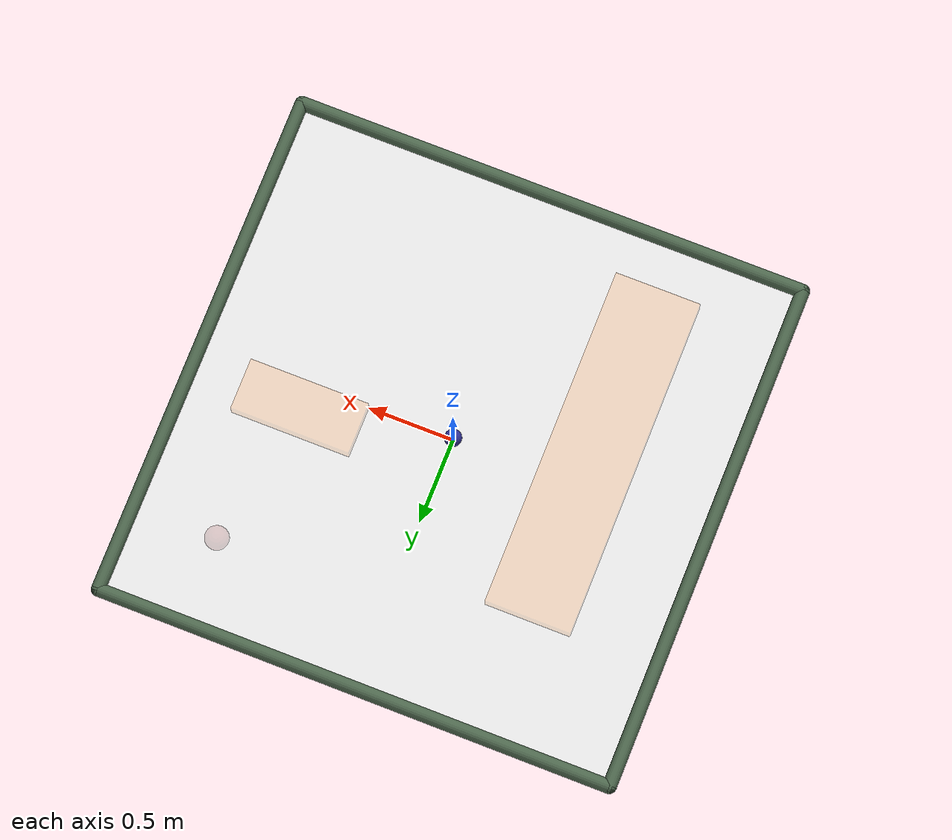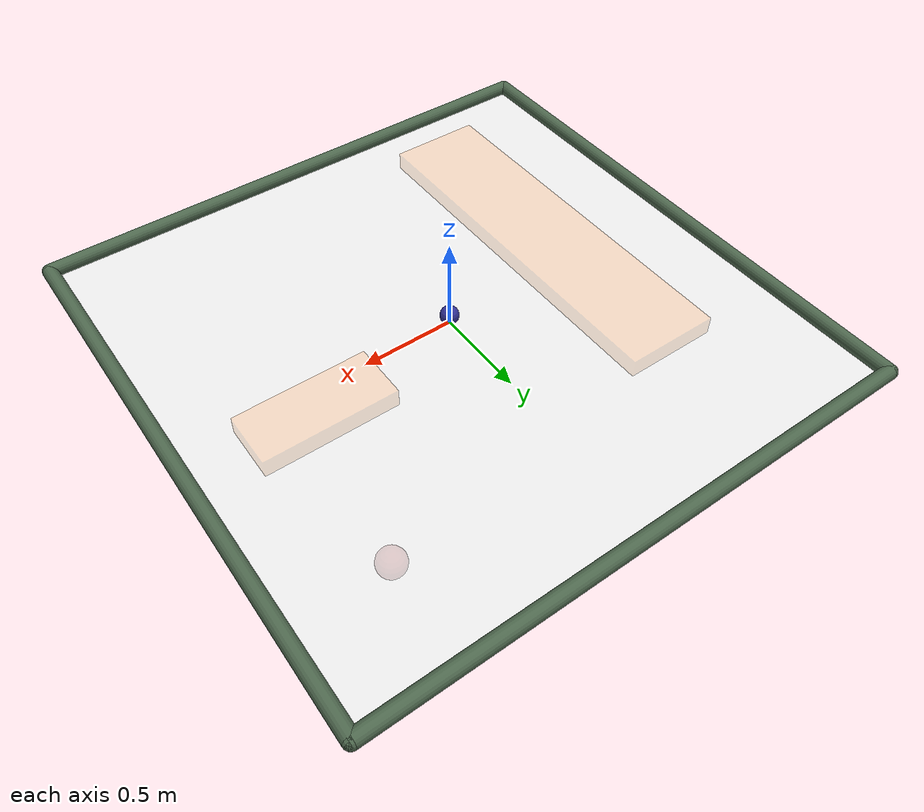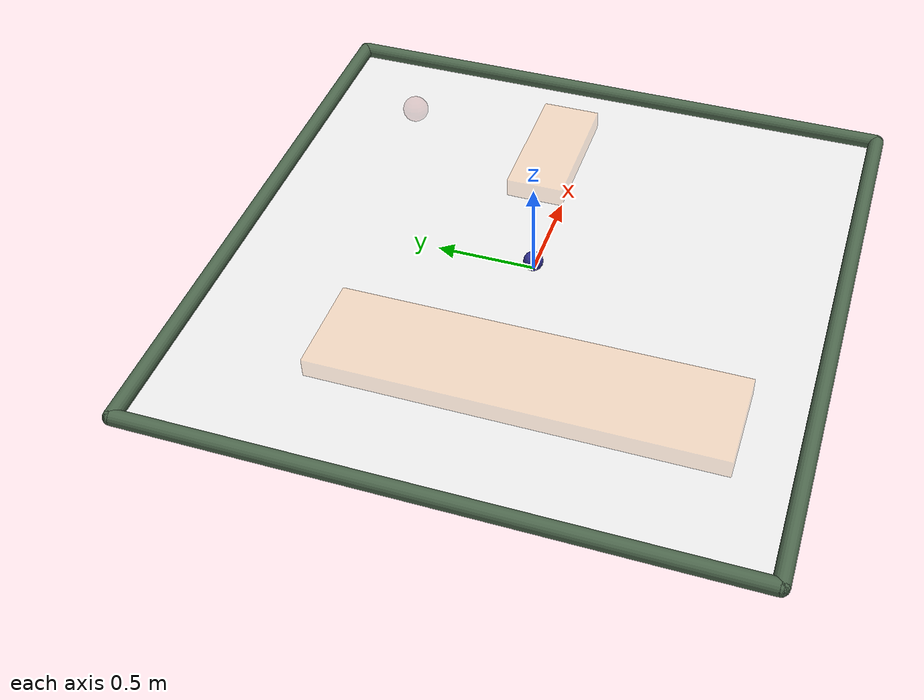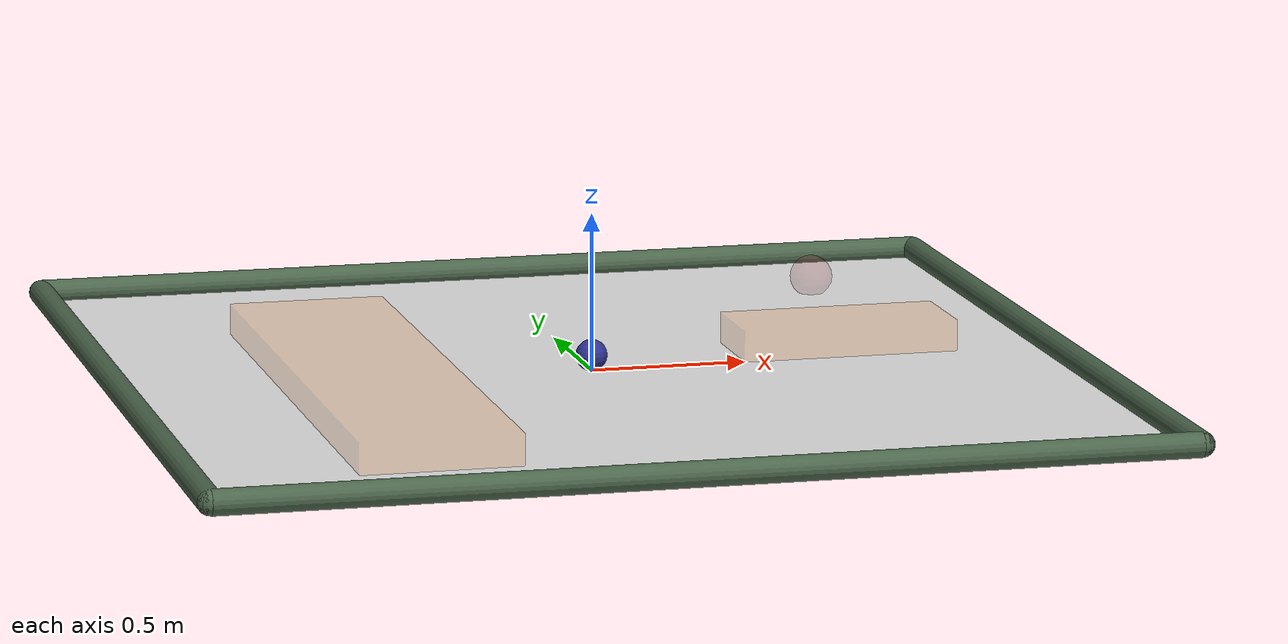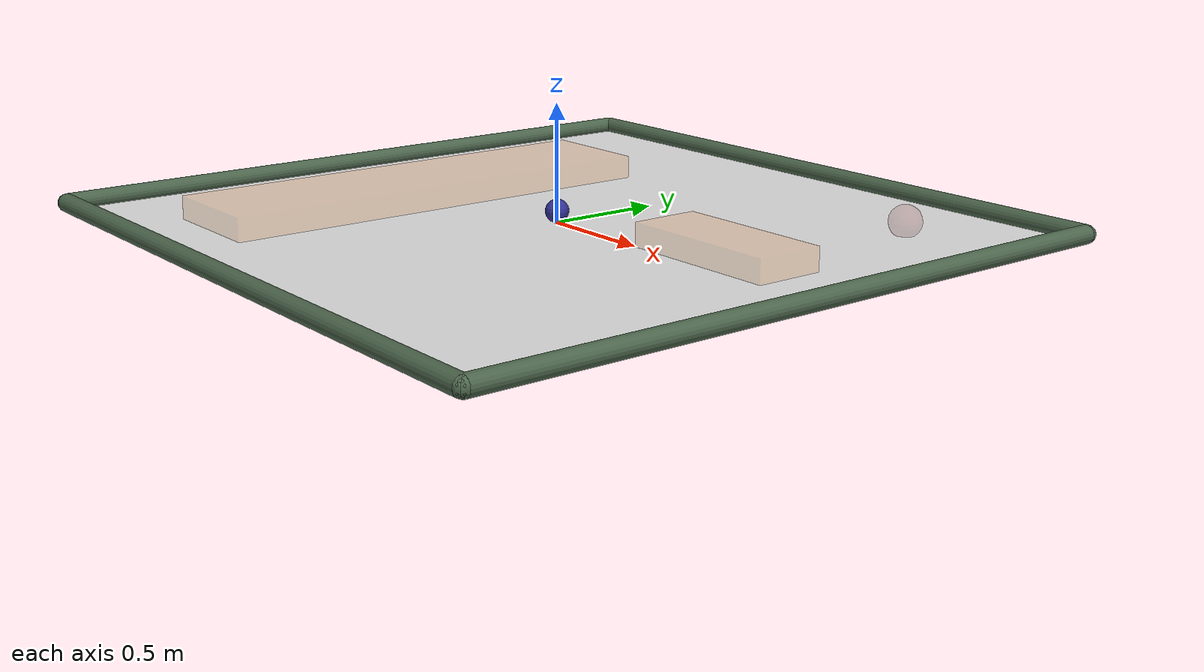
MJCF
<!-- Author + Copyright (C) Aravind Rajeswaran, rajeswaran.aravind@gmail.com.
See LICENSE file for legal notices. LICENSE must be kept together with this file. -->
<mujoco model="PointMass">
    <compiler inertiafromgeom="true" angle="radian" />
    <default>
        <joint armature="0.01" damping="0.1" limited="true"/>
        <geom contype="0" friction="1 0.1 0.1" rgba="0.7 0.7 0 1"/>
        <motor ctrllimited="true" ctrlrange="-1.0 1.0" />
    </default>
    <option gravity="0 0 0" integrator="RK4" timestep="0.01"/>

    <asset>
        <texture type="skybox" builtin="gradient" rgb1=".1 .12 .15" rgb2="0 0 0" width="100" height="100"/>
        <texture builtin="flat" height="100" name="grayplane" rgb1="0.4 0.4 0.4" rgb2=".1 0.15 0.2" type="2d" width="100"/>
        <material name="grayfloor" reflectance="0" shininess="0" specular="1" texture="grayplane"/>
    </asset>

    <worldbody>
        <!-- Arena -->
        <geom conaffinity="0" contype="0" name="ground" pos="0 0 0" rgba="0.9 0.9 0.9 1" size="1.5 1.5 .05" type="plane" material="grayfloor"/>
        <geom conaffinity="0" fromto="-1.5 -1.5 .02 1.5 -1.5 .02" name="sideS" rgba="0.3 0.4 0.3 1.0" size=".04" type="capsule" mass="0.1"/>
        <geom conaffinity="0" fromto=" 1.5 -1.5 .02 1.5  1.5 .02" name="sideE" rgba="0.3 0.4 0.3 1.0" size=".04" type="capsule" mass="0.1"/>
        <geom conaffinity="0" fromto="-1.5  1.5 .02 1.5  1.5 .02" name="sideN" rgba="0.3 0.4 0.3 1.0" size=".04" type="capsule" mass="0.1"/>
        <geom conaffinity="0" fromto="-1.5 -1.5 .02 -1.5 1.5 .02" name="sideW" rgba="0.3 0.4 0.3 1.0" size=".04" type="capsule" mass="0.1"/>

        <!-- Agent -->
        <body name="agent" pos="0 0 .05">
            <joint axis="1 0 0" name="agent_x" pos="0 0 0" range="-1.4 1.4" stiffness="0" type="slide"/>
            <joint axis="0 1 0" name="agent_y" pos="0 0 0" range="-1.4 1.4" stiffness="0" type="slide"/>
            <geom conaffinity="1" contype="1" name="agent" pos="0 0 0" rgba="0.2 0.2 0.6 1" size=".05" type="sphere"/>
        </body>

        <!-- Target -->
        <site name="target" pos="1.0 1.0 .05" rgba="0.6 0.2 0.2 0.2" size=".07" type="sphere" />

        <!-- Potholes -->
        <site name="pothole1" type="box" pos="-0.75 -0.2 0.05" size="0.25 1 0.05" rgba="1.0 0.5 0.1 0.2"/>
        <site name="pothole2" type="box" pos="0.85 0.15 0.05" size="0.35 0.15 0.05" rgba="1.0 0.5 0.1 0.2"/>

    </worldbody>

    <actuator>
        <motor gear="10.0" joint="agent_x"/>
        <motor gear="10.0" joint="agent_y"/>
    </actuator>

</mujoco>
